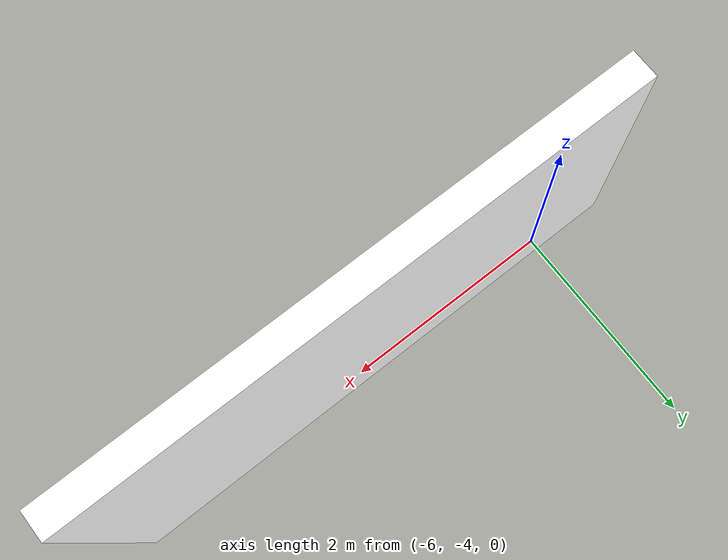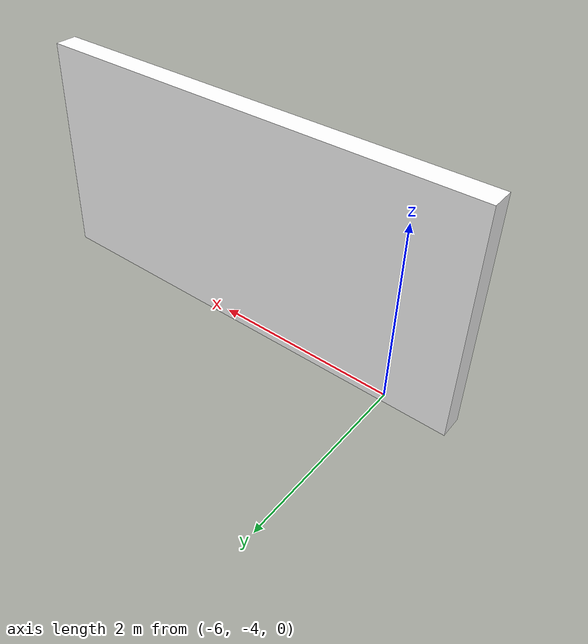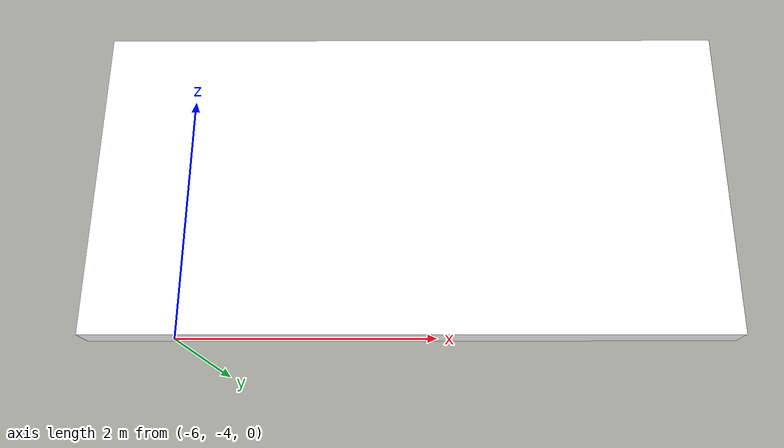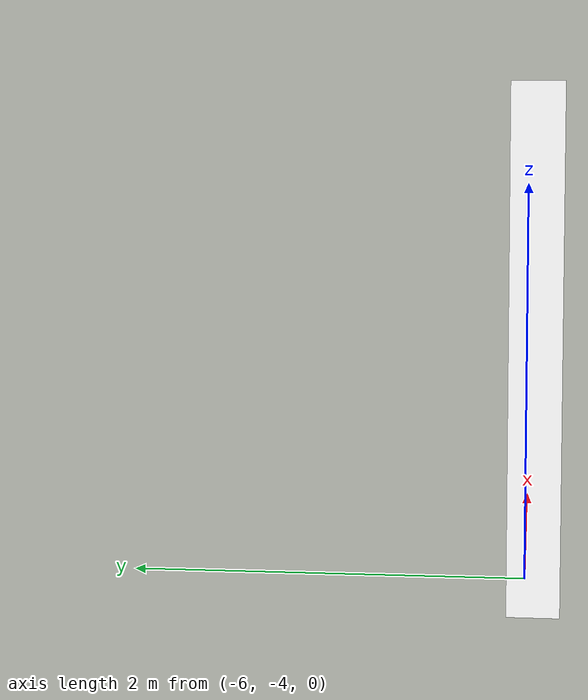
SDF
<?xml version='1.0'?>
<sdf version='1.6'>
  <model name='brick_wall'>
    <pose frame=''>-4.195 -4.04 0 0 -0 0</pose>
    <link name='Wall'>
      <collision name='Wall_Collision'>
        <geometry>
          <box>
            <size>5 0.25 2.5</size>
          </box>
        </geometry>
        <pose frame=''>0 0 1.25 0 -0 0</pose>
      </collision>
      <visual name='Wall_Visual'>
        <pose frame=''>0 0 1.25 0 -0 0</pose>
        <geometry>
          <box>
            <size>5 0.25 2.5</size>
          </box>
        </geometry>
        <material>
          <script>
            <uri>model://brick_wall/materials/scripts/</uri>
	    <uri>model://brick_wall/materials/textures/</uri>
            <name>BrickWall/Image</name>
          </script>
          <ambient>1 1 1 1</ambient>
        </material>
        <meta>
          <layer>0</layer>
        </meta>
      </visual>
      <pose frame=''>0 -0 0 0 -0 0</pose>
    </link>
    <static>1</static>
  </model>
</sdf>
